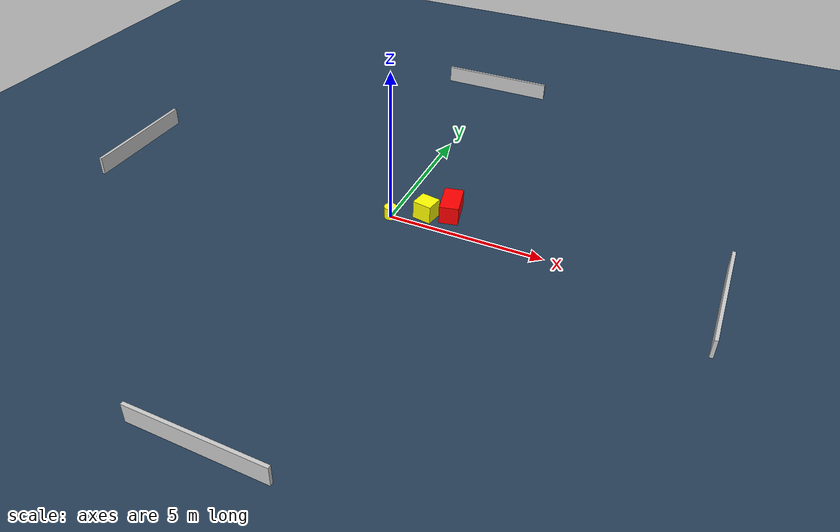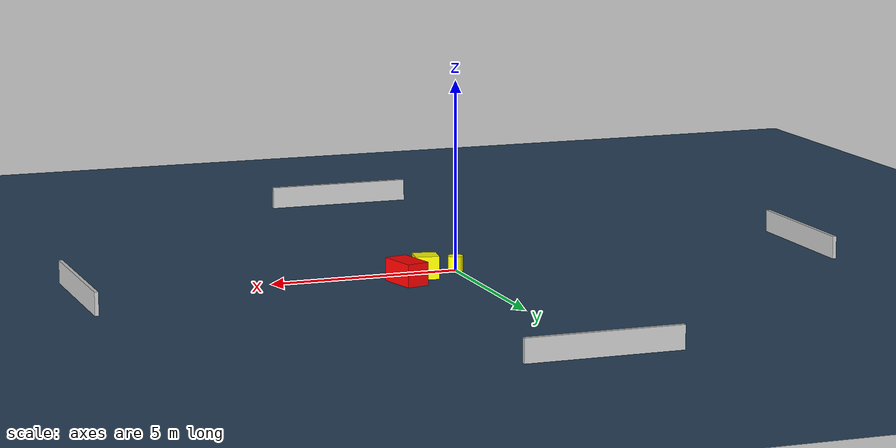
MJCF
<?xml version="1.0" ?>
<mujoco model="generated_environment">
  <option timestep="0.01" integrator="RK4" cone="elliptic"/>
  <default>
    <geom density="1"/>
  </default>
  <asset>
    <texture builtin="gradient" height="3072" name="skybox" rgb1="0.3 0.5 0.7" rgb2="0 0 0" type="skybox" width="512"/>
    <texture builtin="checker" height="300" name="groundplane" rgb1="0.2 0.3 0.4" rgb2="0.1 0.2 0.3" type="2d" width="300"/>
    <material name="groundplane" reflectance="0.2" texrepeat="5 5" texture="groundplane"/>
  </asset>
  <worldbody>
    <light dir="0 0 -1" directional="true" pos="0 0 1.5"/>
    <geom condim="3" friction="0.5 0.005 0.001" material="groundplane" name="floor" pos="0 0 0" size="0 0 0.05" type="plane"/>
    <body name="walls">
      <geom name="wall_1" condim="4" pos="-10.0 0.0 0.3" rgba="0.800000011920929 0.800000011920929 0.800000011920929 1.0" size="0.05 2.0 0.3" type="box"/>
      <geom name="wall_2" condim="4" pos="10.0 0.0 0.3" rgba="0.800000011920929 0.800000011920929 0.800000011920929 1.0" size="0.05 2.0 0.3" type="box"/>
      <geom name="wall_3" condim="4" pos="0.0 -10.0 0.3" rgba="0.800000011920929 0.800000011920929 0.800000011920929 1.0" size="2.0 0.05 0.3" type="box"/>
      <geom name="wall_4" condim="4" pos="0.0 10.0 0.3" rgba="0.800000011920929 0.800000011920929 0.800000011920929 1.0" size="2.0 0.05 0.3" type="box"/>
    </body>
    <body name="robot">
      <joint name="joint_x" type="slide" pos="0 0 0" axis="1 0 0"/>
      <joint name="joint_y" type="slide" pos="0 0 0" axis="0 1 0"/>
      <geom name="robot" type="cylinder" pos="0.0 0.0 0.2" size="0.2 0.2 0.0" mass="5.0" friction="1.0 0.005 0.0001" condim="4" rgba="1.0 1.0 0.0 1.0"/>
    </body>
    <body name="obstacle_1_movable">
      <geom name="obstacle_1_movable" condim="4" pos="1.0069826788448415 0.5181085530461729 0.3" euler="0 0 170.31736578456105" friction="0.0 0.005 0.001" rgba="1.0 1.0 0.0 1.0" size="0.3120789121957398 0.2877483311270235 0.3" type="box" mass="0.1"/>
      <joint type="free"/>
    </body>
    <body name="obstacle_2_static">
      <geom name="obstacle_2_static" condim="4" pos="1.6755621736356392 0.9689644227569404 0.3" euler="0 0 12.791118330492349" friction="0.0 0.005 0.001" rgba="1.0 0.0 0.0 1.0" size="0.3048955232903132 0.553050995497671 0.3" type="box"/>
    </body>
  </worldbody>
  <actuator>
    <motor name="actuator_x" joint="joint_x" gear="1" ctrlrange="-1 1"/>
    <motor name="actuator_y" joint="joint_y" gear="1" ctrlrange="-1 1"/>
  </actuator>
</mujoco>
